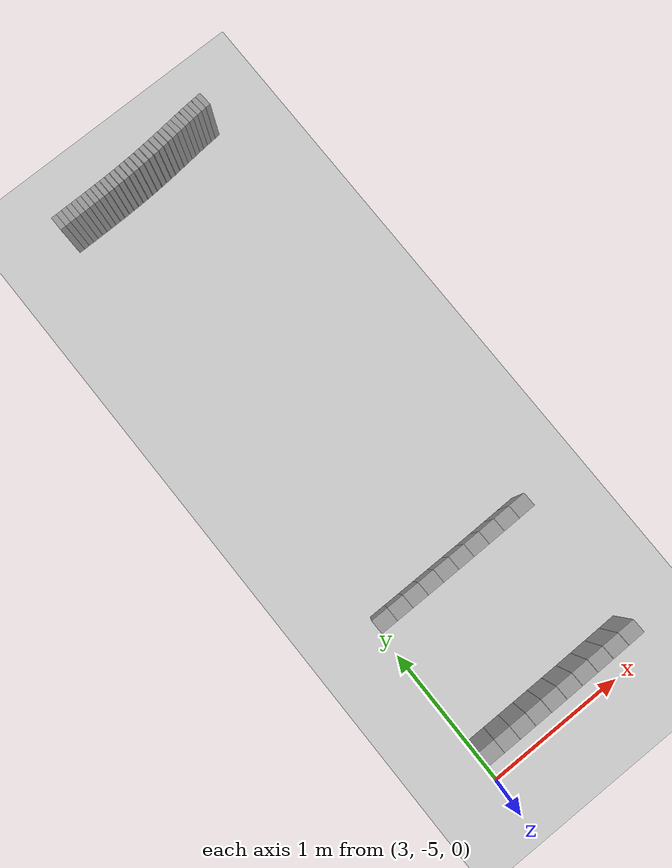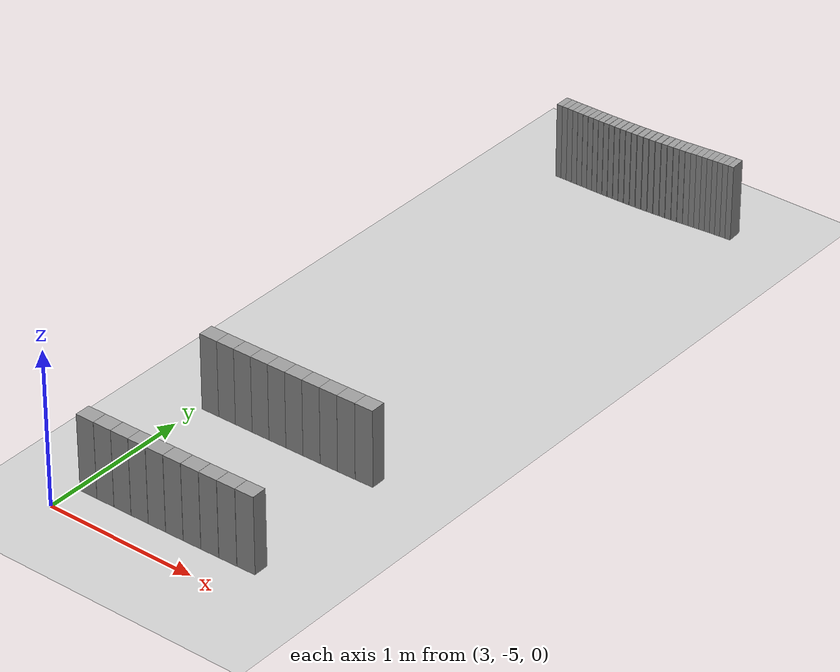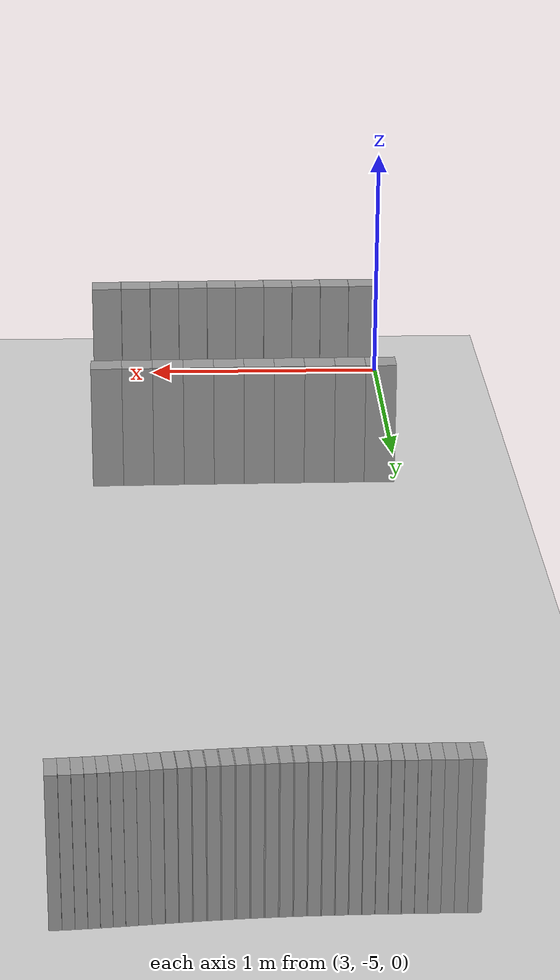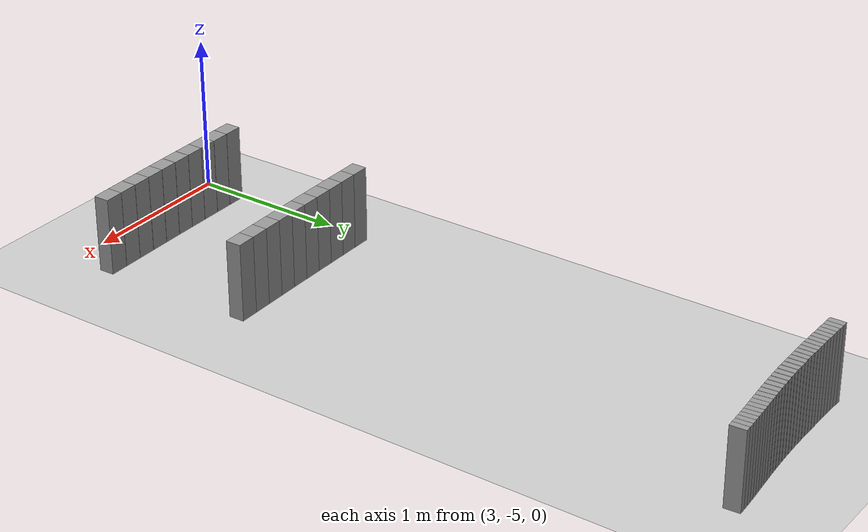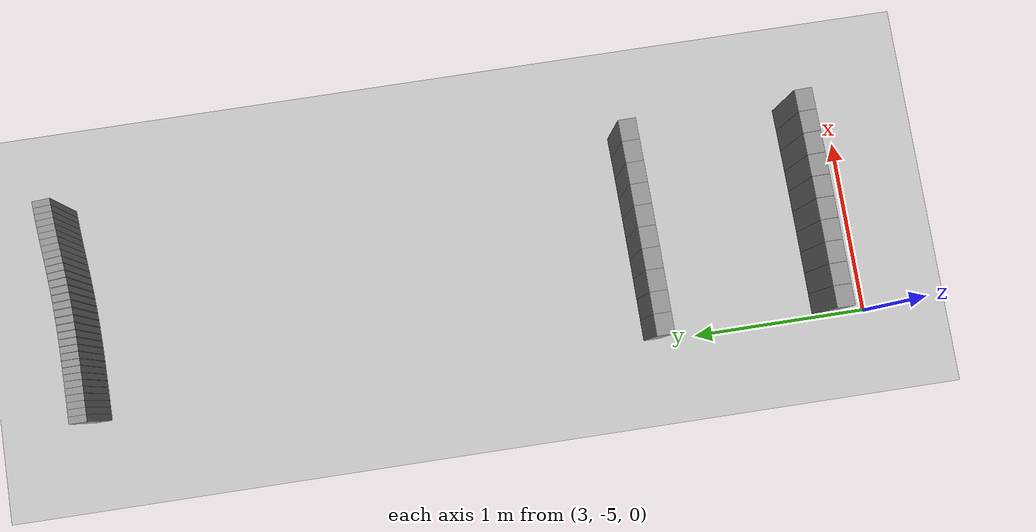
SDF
<sdf version="1.6">
 <world name="default">
  <include><uri>model://ground_plane</uri></include>
  <include><uri>model://sun</uri></include>
  <model name="wall_370_outward">
   <static>true</static>
   <link name="link">
    <collision name="collision">
     <geometry><box><size>0.12366791755563392 0.1 0.5</size></box></geometry>
    </collision>
    <visual name="visual">
     <geometry><box><size>0.12366791755563392 0.1 0.5</size></box></geometry>
     <material>
      <script><uri>file://media/materials/scripts/gazebo.material</uri><name>Gazebo/Gray</name></script>
     </material>
    </visual>
   </link>
   <pose>4.19330517443763 -4.7351160117918205 0.25 0 0 -3.1202677984249325</pose>
  </model>
  <model name="wall_371_outward">
   <static>true</static>
   <link name="link">
    <collision name="collision">
     <geometry><box><size>0.0010870246710620978 0.1 0.5</size></box></geometry>
    </collision>
    <visual name="visual">
     <geometry><box><size>0.0010870246710620978 0.1 0.5</size></box></geometry>
     <material>
      <script><uri>file://media/materials/scripts/gazebo.material</uri><name>Gazebo/Gray</name></script>
     </material>
    </visual>
   </link>
   <pose>4.130941873570114 -4.736445510830086 0.25 0 0 -3.121354823309786</pose>
  </model>
  <model name="wall_372_outward">
   <static>true</static>
   <link name="link">
    <collision name="collision">
     <geometry><box><size>0.12321832127677985 0.1 0.5</size></box></geometry>
    </collision>
    <visual name="visual">
     <geometry><box><size>0.12321832127677985 0.1 0.5</size></box></geometry>
     <material>
      <script><uri>file://media/materials/scripts/gazebo.material</uri><name>Gazebo/Gray</name></script>
     </material>
    </visual>
   </link>
   <pose>4.068800609233165 -4.7376363025169805 0.25 0 0 -3.122441848195207</pose>
  </model>
  <model name="wall_373_outward">
   <static>true</static>
   <link name="link">
    <collision name="collision">
     <geometry><box><size>0.00110959611185202 0.1 0.5</size></box></geometry>
    </collision>
    <visual name="visual">
     <geometry><box><size>0.00110959611185202 0.1 0.5</size></box></geometry>
     <material>
      <script><uri>file://media/materials/scripts/gazebo.material</uri><name>Gazebo/Gray</name></script>
     </material>
    </visual>
   </link>
   <pose>4.006648038163343 -4.738826104129047 0.25 0 0 -3.123551444534683</pose>
  </model>
  <model name="wall_374_outward">
   <static>true</static>
   <link name="link">
    <collision name="collision">
     <geometry><box><size>0.12275183024024117 0.1 0.5</size></box></geometry>
    </collision>
    <visual name="visual">
     <geometry><box><size>0.12275183024024117 0.1 0.5</size></box></geometry>
     <material>
      <script><uri>file://media/materials/scripts/gazebo.material</uri><name>Gazebo/Gray</name></script>
     </material>
    </visual>
   </link>
   <pose>3.9447262126725704 -4.739875256386808 0.25 0 0 -3.12466104087429</pose>
  </model>
  <model name="wall_375_outward">
   <static>true</static>
   <link name="link">
    <collision name="collision">
     <geometry><box><size>0.0011113499905004661 0.1 0.5</size></box></geometry>
    </collision>
    <visual name="visual">
     <geometry><box><size>0.0011113499905004661 0.1 0.5</size></box></geometry>
     <material>
      <script><uri>file://media/materials/scripts/gazebo.material</uri><name>Gazebo/Gray</name></script>
     </material>
    </visual>
   </link>
   <pose>3.8828034894915513 -4.740923190517418 0.25 0 0 -3.1257723910938977</pose>
  </model>
  <model name="wall_376_outward">
   <static>true</static>
   <link name="link">
    <collision name="collision">
     <geometry><box><size>0.12232557566678652 0.1 0.5</size></box></geometry>
    </collision>
    <visual name="visual">
     <geometry><box><size>0.12232557566678652 0.1 0.5</size></box></geometry>
     <material>
      <script><uri>file://media/materials/scripts/gazebo.material</uri><name>Gazebo/Gray</name></script>
     </material>
    </visual>
   </link>
   <pose>3.8210917124283412 -4.741831586716453 0.25 0 0 -3.1268837413128336</pose>
  </model>
  <model name="wall_377_outward">
   <static>true</static>
   <link name="link">
    <collision name="collision">
     <geometry><box><size>0.001083072633850852 0.1 0.5</size></box></geometry>
    </collision>
    <visual name="visual">
     <geometry><box><size>0.001083072633850852 0.1 0.5</size></box></geometry>
     <material>
      <script><uri>file://media/materials/scripts/gazebo.material</uri><name>Gazebo/Gray</name></script>
     </material>
    </visual>
   </link>
   <pose>3.7593940547785274 -4.742738571016465 0.25 0 0 -3.127966814158209</pose>
  </model>
  <model name="wall_378_outward">
   <static>true</static>
   <link name="link">
    <collision name="collision">
     <geometry><box><size>0.12199307544383395 0.1 0.5</size></box></geometry>
    </collision>
    <visual name="visual">
     <geometry><box><size>0.12199307544383395 0.1 0.5</size></box></geometry>
     <material>
      <script><uri>file://media/materials/scripts/gazebo.material</uri><name>Gazebo/Gray</name></script>
     </material>
    </visual>
   </link>
   <pose>3.69786082896573 -4.74351099495024 0.25 0 0 -3.1290498870040335</pose>
  </model>
  <model name="wall_379_outward">
   <static>true</static>
   <link name="link">
    <collision name="collision">
     <geometry><box><size>0.001026236252255086 0.1 0.5</size></box></geometry>
    </collision>
    <visual name="visual">
     <geometry><box><size>0.001026236252255086 0.1 0.5</size></box></geometry>
     <material>
      <script><uri>file://media/materials/scripts/gazebo.material</uri><name>Gazebo/Gray</name></script>
     </material>
    </visual>
   </link>
   <pose>3.636356005099917 -4.74428194943519 0.25 0 0 -3.130076123436059</pose>
  </model>
  <model name="wall_380_outward">
   <static>true</static>
   <link name="link">
    <collision name="collision">
     <geometry><box><size>0.12180383852046615 0.1 0.5</size></box></geometry>
    </collision>
    <visual name="visual">
     <geometry><box><size>0.12180383852046615 0.1 0.5</size></box></geometry>
     <material>
      <script><uri>file://media/materials/scripts/gazebo.material</uri><name>Gazebo/Gray</name></script>
     </material>
    </visual>
   </link>
   <pose>3.57494435272429 -4.744926725948504 0.25 0 0 -3.131102359868808</pose>
  </model>
  <model name="wall_381_outward">
   <static>true</static>
   <link name="link">
    <collision name="collision">
     <geometry><box><size>0.0009478194596262945 0.1 0.5</size></box></geometry>
    </collision>
    <visual name="visual">
     <geometry><box><size>0.0009478194596262945 0.1 0.5</size></box></geometry>
     <material>
      <script><uri>file://media/materials/scripts/gazebo.material</uri><name>Gazebo/Gray</name></script>
     </material>
    </visual>
   </link>
   <pose>3.513571896294471 -4.745570115454772 0.25 0 0 -3.132050179470421</pose>
  </model>
  <model name="wall_382_outward">
   <static>true</static>
   <link name="link">
    <collision name="collision">
     <geometry><box><size>0.12179123288356289 0.1 0.5</size></box></geometry>
    </collision>
    <visual name="visual">
     <geometry><box><size>0.12179123288356289 0.1 0.5</size></box></geometry>
     <material>
      <script><uri>file://media/materials/scripts/gazebo.material</uri><name>Gazebo/Gray</name></script>
     </material>
    </visual>
   </link>
   <pose>3.452204640807021 -4.746098007998994 0.25 0 0 -3.1329979990718884</pose>
  </model>
  <model name="wall_383_outward">
   <static>true</static>
   <link name="link">
    <collision name="collision">
     <geometry><box><size>0.0008492713830973765 0.1 0.5</size></box></geometry>
    </collision>
    <visual name="visual">
     <geometry><box><size>0.0008492713830973765 0.1 0.5</size></box></geometry>
     <material>
      <script><uri>file://media/materials/scripts/gazebo.material</uri><name>Gazebo/Gray</name></script>
     </material>
    </visual>
   </link>
   <pose>3.390886650518258 -4.7466246672737125 0.25 0 0 -3.1338472705576295</pose>
  </model>
  <model name="wall_384_outward">
   <static>true</static>
   <link name="link">
    <collision name="collision">
     <geometry><box><size>0.1219790886761732 0.1 0.5</size></box></geometry>
    </collision>
    <visual name="visual">
     <geometry><box><size>0.1219790886761732 0.1 0.5</size></box></geometry>
     <material>
      <script><uri>file://media/materials/scripts/gazebo.material</uri><name>Gazebo/Gray</name></script>
     </material>
    </visual>
   </link>
   <pose>3.329473933440158 -4.747048543574277 0.25 0 0 -3.1346965420422657</pose>
  </model>
  <model name="wall_385_outward">
   <static>true</static>
   <link name="link">
    <collision name="collision">
     <geometry><box><size>0.00073944769239684 0.1 0.5</size></box></geometry>
    </collision>
    <visual name="visual">
     <geometry><box><size>0.00073944769239684 0.1 0.5</size></box></geometry>
     <material>
      <script><uri>file://media/materials/scripts/gazebo.material</uri><name>Gazebo/Gray</name></script>
     </material>
    </visual>
   </link>
   <pose>3.268116122477399 -4.747471407192682 0.25 0 0 -3.135435989802174</pose>
  </model>
  <model name="wall_386_outward">
   <static>true</static>
   <link name="link">
    <collision name="collision">
     <geometry><box><size>0.12237171006181398 0.1 0.5</size></box></geometry>
    </collision>
    <visual name="visual">
     <geometry><box><size>0.12237171006181398 0.1 0.5</size></box></geometry>
     <material>
      <script><uri>file://media/materials/scripts/gazebo.material</uri><name>Gazebo/Gray</name></script>
     </material>
    </visual>
   </link>
   <pose>3.206561448392248 -4.7478051388171085 0.25 0 0 -3.1361754375618314</pose>
  </model>
  <model name="wall_387_outward">
   <static>true</static>
   <link name="link">
    <collision name="collision">
     <geometry><box><size>0.0006247259712482788 0.1 0.5</size></box></geometry>
    </collision>
    <visual name="visual">
     <geometry><box><size>0.0006247259712482788 0.1 0.5</size></box></geometry>
     <material>
      <script><uri>file://media/materials/scripts/gazebo.material</uri><name>Gazebo/Gray</name></script>
     </material>
    </visual>
   </link>
   <pose>3.1450641317477563 -4.74813809118126 0.25 0 0 -3.1368001635727953</pose>
  </model>
  <model name="wall_388_outward">
   <static>true</static>
   <link name="link">
    <collision name="collision">
     <geometry><box><size>0.12296129148105463 0.1 0.5</size></box></geometry>
    </collision>
    <visual name="visual">
     <geometry><box><size>0.12296129148105463 0.1 0.5</size></box></geometry>
     <material>
      <script><uri>file://media/materials/scripts/gazebo.material</uri><name>Gazebo/Gray</name></script>
     </material>
    </visual>
   </link>
   <pose>3.083271660575298 -4.7483958242524755 0.25 0 0 -3.137424889585602</pose>
  </model>
  <model name="wall_9_inward">
   <static>true</static>
   <link name="link">
    <collision name="collision">
     <geometry><box><size>0.04004275637028519 0.1 0.5</size></box></geometry>
    </collision>
    <visual name="visual">
     <geometry><box><size>0.04004275637028519 0.1 0.5</size></box></geometry>
     <material>
      <script><uri>file://media/materials/scripts/gazebo.material</uri><name>Gazebo/Gray</name></script>
     </material>
    </visual>
   </link>
   <pose>3.0459852781860457 -0.5249386952649255 0.25 0 0 0.0007166678419841866</pose>
  </model>
  <model name="wall_10_inward">
   <static>true</static>
   <link name="link">
    <collision name="collision">
     <geometry><box><size>0.03935795731013227 0.1 0.5</size></box></geometry>
    </collision>
    <visual name="visual">
     <geometry><box><size>0.03935795731013227 0.1 0.5</size></box></geometry>
     <material>
      <script><uri>file://media/materials/scripts/gazebo.material</uri><name>Gazebo/Gray</name></script>
     </material>
    </visual>
   </link>
   <pose>3.0856856178751544 -0.5249026056463659 0.25 0 0 0.0011047802172066445</pose>
  </model>
  <model name="wall_11_inward">
   <static>true</static>
   <link name="link">
    <collision name="collision">
     <geometry><box><size>0.038790238399505385 0.1 0.5</size></box></geometry>
    </collision>
    <visual name="visual">
     <geometry><box><size>0.038790238399505385 0.1 0.5</size></box></geometry>
     <material>
      <script><uri>file://media/materials/scripts/gazebo.material</uri><name>Gazebo/Gray</name></script>
     </material>
    </visual>
   </link>
   <pose>3.124759676745194 -0.5248485169463286 0.25 0 0 0.0016678305923522106</pose>
  </model>
  <model name="wall_12_inward">
   <static>true</static>
   <link name="link">
    <collision name="collision">
     <geometry><box><size>0.03781016411227607 0.1 0.5</size></box></geometry>
    </collision>
    <visual name="visual">
     <geometry><box><size>0.03781016411227607 0.1 0.5</size></box></geometry>
     <material>
      <script><uri>file://media/materials/scripts/gazebo.material</uri><name>Gazebo/Gray</name></script>
     </material>
    </visual>
   </link>
   <pose>3.163059793958107 -0.5247697177604749 0.25 0 0 0.00245708927943689</pose>
  </model>
  <model name="wall_13_inward">
   <static>true</static>
   <link name="link">
    <collision name="collision">
     <geometry><box><size>0.0005469804384499359 0.1 0.5</size></box></geometry>
    </collision>
    <visual name="visual">
     <geometry><box><size>0.0005469804384499359 0.1 0.5</size></box></geometry>
     <material>
      <script><uri>file://media/materials/scripts/gazebo.material</uri><name>Gazebo/Gray</name></script>
     </material>
    </visual>
   </link>
   <pose>3.1822383079317422 -0.5247224447503106 0.25 0 0 0.00300406974497649</pose>
  </model>
  <model name="wall_14_inward">
   <static>true</static>
   <link name="link">
    <collision name="collision">
     <geometry><box><size>0.037336876459450434 0.1 0.5</size></box></geometry>
    </collision>
    <visual name="visual">
     <geometry><box><size>0.037336876459450434 0.1 0.5</size></box></geometry>
     <material>
      <script><uri>file://media/materials/scripts/gazebo.material</uri><name>Gazebo/Gray</name></script>
     </material>
    </visual>
   </link>
   <pose>3.2011801174426626 -0.524655330745665 0.25 0 0 0.003551050210885177</pose>
  </model>
  <model name="wall_15_inward">
   <static>true</static>
   <link name="link">
    <collision name="collision">
     <geometry><box><size>0.000735328271408092 0.1 0.5</size></box></geometry>
    </collision>
    <visual name="visual">
     <geometry><box><size>0.000735328271408092 0.1 0.5</size></box></geometry>
     <material>
      <script><uri>file://media/materials/scripts/gazebo.material</uri><name>Gazebo/Gray</name></script>
     </material>
    </visual>
   </link>
   <pose>3.220216098726559 -0.5245874623806381 0.25 0 0 0.004286378548627907</pose>
  </model>
  <model name="wall_16_inward">
   <static>true</static>
   <link name="link">
    <collision name="collision">
     <geometry><box><size>0.03697863559663404 0.1 0.5</size></box></geometry>
    </collision>
    <visual name="visual">
     <geometry><box><size>0.03697863559663404 0.1 0.5</size></box></geometry>
     <material>
      <script><uri>file://media/materials/scripts/gazebo.material</uri><name>Gazebo/Gray</name></script>
     </material>
    </visual>
   </link>
   <pose>3.239072844155965 -0.5244930388935223 0.25 0 0 0.005021706886232845</pose>
  </model>
  <model name="wall_17_inward">
   <static>true</static>
   <link name="link">
    <collision name="collision">
     <geometry><box><size>0.0009633117974473523 0.1 0.5</size></box></geometry>
    </collision>
    <visual name="visual">
     <geometry><box><size>0.0009633117974473523 0.1 0.5</size></box></geometry>
     <material>
      <script><uri>file://media/materials/scripts/gazebo.material</uri><name>Gazebo/Gray</name></script>
     </material>
    </visual>
   </link>
   <pose>3.2580435760994 -0.5243973086468303 0.25 0 0 0.00598501883269757</pose>
  </model>
  <model name="wall_18_inward">
   <static>true</static>
   <link name="link">
    <collision name="collision">
     <geometry><box><size>0.03673906226880032 0.1 0.5</size></box></geometry>
    </collision>
    <visual name="visual">
     <geometry><box><size>0.03673906226880032 0.1 0.5</size></box></geometry>
     <material>
      <script><uri>file://media/materials/scripts/gazebo.material</uri><name>Gazebo/Gray</name></script>
     </material>
    </visual>
   </link>
   <pose>3.27689431107371 -0.5242667893928763 0.25 0 0 0.006948330779105071</pose>
  </model>
  <model name="wall_19_inward">
   <static>true</static>
   <link name="link">
    <collision name="collision">
     <geometry><box><size>0.001230187532855087 0.1 0.5</size></box></geometry>
    </collision>
    <visual name="visual">
     <geometry><box><size>0.001230187532855087 0.1 0.5</size></box></geometry>
     <material>
      <script><uri>file://media/materials/scripts/gazebo.material</uri><name>Gazebo/Gray</name></script>
     </material>
    </visual>
   </link>
   <pose>3.295878471971131 -0.5241341223415947 0.25 0 0 0.008178518622116182</pose>
  </model>
  <model name="wall_20_inward">
   <static>true</static>
   <link name="link">
    <collision name="collision">
     <geometry><box><size>0.03661372810756917 0.1 0.5</size></box></geometry>
    </collision>
    <visual name="visual">
     <geometry><box><size>0.03661372810756917 0.1 0.5</size></box></geometry>
     <material>
      <script><uri>file://media/materials/scripts/gazebo.material</uri><name>Gazebo/Gray</name></script>
     </material>
    </visual>
   </link>
   <pose>3.3147995989299925 -0.5239568504729368 0.25 0 0 0.009408706465386626</pose>
  </model>
  <model name="wall_21_inward">
   <static>true</static>
   <link name="link">
    <collision name="collision">
     <geometry><box><size>0.0015318461882710007 0.1 0.5</size></box></geometry>
    </collision>
    <visual name="visual">
     <geometry><box><size>0.0015318461882710007 0.1 0.5</size></box></geometry>
     <material>
      <script><uri>file://media/materials/scripts/gazebo.material</uri><name>Gazebo/Gray</name></script>
     </material>
    </visual>
   </link>
   <pose>3.333871529949299 -0.5237762296487889 0.25 0 0 0.010940553252866608</pose>
  </model>
  <model name="wall_22_inward">
   <static>true</static>
   <link name="link">
    <collision name="collision">
     <geometry><box><size>0.03659415004778751 0.1 0.5</size></box></geometry>
    </collision>
    <visual name="visual">
     <geometry><box><size>0.03659415004778751 0.1 0.5</size></box></geometry>
     <material>
      <script><uri>file://media/materials/scripts/gazebo.material</uri><name>Gazebo/Gray</name></script>
     </material>
    </visual>
   </link>
   <pose>3.3529330590939086 -0.5235396476709615 0.25 0 0 0.01247240004011466</pose>
  </model>
  <model name="wall_23_inward">
   <static>true</static>
   <link name="link">
    <collision name="collision">
     <geometry><box><size>0.0018608365392224402 0.1 0.5</size></box></geometry>
    </collision>
    <visual name="visual">
     <geometry><box><size>0.0018608365392224402 0.1 0.5</size></box></geometry>
     <material>
      <script><uri>file://media/materials/scripts/gazebo.material</uri><name>Gazebo/Gray</name></script>
     </material>
    </visual>
   </link>
   <pose>3.372159033680669 -0.523298109698812 0.25 0 0 0.01433323765323476</pose>
  </model>
  <model name="wall_24_inward">
   <static>true</static>
   <link name="link">
    <collision name="collision">
     <geometry><box><size>0.036667603985951015 0.1 0.5</size></box></geometry>
    </collision>
    <visual name="visual">
     <geometry><box><size>0.036667603985951015 0.1 0.5</size></box></geometry>
     <material>
      <script><uri>file://media/materials/scripts/gazebo.material</uri><name>Gazebo/Gray</name></script>
     </material>
    </visual>
   </link>
   <pose>3.3914207544219437 -0.5229878882565572 0.25 0 0 0.016194075266410042</pose>
  </model>
  <model name="wall_25_inward">
   <static>true</static>
   <link name="link">
    <collision name="collision">
     <geometry><box><size>0.0022071171476583927 0.1 0.5</size></box></geometry>
    </collision>
    <visual name="visual">
     <geometry><box><size>0.0022071171476583927 0.1 0.5</size></box></geometry>
     <material>
      <script><uri>file://media/materials/scripts/gazebo.material</uri><name>Gazebo/Gray</name></script>
     </material>
    </visual>
   </link>
   <pose>3.410855524209783 -0.5226706966141965 0.25 0 0 0.018401194206001562</pose>
  </model>
  <model name="wall_26_inward">
   <static>true</static>
   <link name="link">
    <collision name="collision">
     <geometry><box><size>0.03681560215753572 0.1 0.5</size></box></geometry>
    </collision>
    <visual name="visual">
     <geometry><box><size>0.03681560215753572 0.1 0.5</size></box></geometry>
     <material>
      <script><uri>file://media/materials/scripts/gazebo.material</uri><name>Gazebo/Gray</name></script>
     </material>
    </visual>
   </link>
   <pose>3.4303627882511294 -0.522271064087096 0.25 0 0 0.020608313145628835</pose>
  </model>
  <model name="wall_27_inward">
   <static>true</static>
   <link name="link">
    <collision name="collision">
     <geometry><box><size>0.002558353354229346 0.1 0.5</size></box></geometry>
    </collision>
    <visual name="visual">
     <geometry><box><size>0.002558353354229346 0.1 0.5</size></box></geometry>
     <material>
      <script><uri>file://media/materials/scripts/gazebo.material</uri><name>Gazebo/Gray</name></script>
     </material>
    </visual>
   </link>
   <pose>3.4500455139769004 -0.5218621055972998 0.25 0 0 0.0231666692907142</pose>
  </model>
  <model name="wall_28_inward">
   <static>true</static>
   <link name="link">
    <collision name="collision">
     <geometry><box><size>0.037015600175348246 0.1 0.5</size></box></geometry>
    </collision>
    <visual name="visual">
     <geometry><box><size>0.037015600175348246 0.1 0.5</size></box></geometry>
     <material>
      <script><uri>file://media/materials/scripts/gazebo.material</uri><name>Gazebo/Gray</name></script>
     </material>
    </visual>
   </link>
   <pose>3.4698260238135807 -0.521356412868694 0.25 0 0 0.025725025435726502</pose>
  </model>
  <model name="wall_29_inward">
   <static>true</static>
   <link name="link">
    <collision name="collision">
     <geometry><box><size>0.00289992183832993 0.1 0.5</size></box></geometry>
    </collision>
    <visual name="visual">
     <geometry><box><size>0.00289992183832993 0.1 0.5</size></box></geometry>
     <material>
      <script><uri>file://media/materials/scripts/gazebo.material</uri><name>Gazebo/Gray</name></script>
     </material>
    </visual>
   </link>
   <pose>3.489777067140934 -0.5208388523595822 0.25 0 0 0.028624951338530897</pose>
  </model>
  <model name="wall_30_inward">
   <static>true</static>
   <link name="link">
    <collision name="collision">
     <geometry><box><size>0.037244120438127054 0.1 0.5</size></box></geometry>
    </collision>
    <visual name="visual">
     <geometry><box><size>0.037244120438127054 0.1 0.5</size></box></geometry>
     <material>
      <script><uri>file://media/materials/scripts/gazebo.material</uri><name>Gazebo/Gray</name></script>
     </material>
    </visual>
   </link>
   <pose>3.5098392415776294 -0.5202103920376497 0.25 0 0 0.03152487724142456</pose>
  </model>
  <model name="wall_31_inward">
   <static>true</static>
   <link name="link">
    <collision name="collision">
     <geometry><box><size>0.0032156344819885543 0.1 0.5</size></box></geometry>
    </collision>
    <visual name="visual">
     <geometry><box><size>0.0032156344819885543 0.1 0.5</size></box></geometry>
     <material>
      <script><uri>file://media/materials/scripts/gazebo.material</uri><name>Gazebo/Gray</name></script>
     </material>
    </visual>
   </link>
   <pose>3.530058896193184 -0.5195675859408302 0.25 0 0 0.034740517265201984</pose>
  </model>
  <model name="wall_32_inward">
   <static>true</static>
   <link name="link">
    <collision name="collision">
     <geometry><box><size>0.03747816316905265 0.1 0.5</size></box></geometry>
    </collision>
    <visual name="visual">
     <geometry><box><size>0.03747816316905265 0.1 0.5</size></box></geometry>
     <material>
      <script><uri>file://media/materials/scripts/gazebo.material</uri><name>Gazebo/Gray</name></script>
     </material>
    </visual>
   </link>
   <pose>3.550391328081436 -0.5188006480153616 0.25 0 0 0.037956157289000286</pose>
  </model>
  <model name="wall_33_inward">
   <static>true</static>
   <link name="link">
    <collision name="collision">
     <geometry><box><size>0.0034897356509867392 0.1 0.5</size></box></geometry>
    </collision>
    <visual name="visual">
     <geometry><box><size>0.0034897356509867392 0.1 0.5</size></box></geometry>
     <material>
      <script><uri>file://media/materials/scripts/gazebo.material</uri><name>Gazebo/Gray</name></script>
     </material>
    </visual>
   </link>
   <pose>3.57086028227691 -0.518017258342499 0.25 0 0 0.04144590002317079</pose>
  </model>
  <model name="wall_34_inward">
   <static>true</static>
   <link name="link">
    <collision name="collision">
     <geometry><box><size>0.037694022170647136 0.1 0.5</size></box></geometry>
    </collision>
    <visual name="visual">
     <geometry><box><size>0.037694022170647136 0.1 0.5</size></box></geometry>
     <material>
      <script><uri>file://media/materials/scripts/gazebo.material</uri><name>Gazebo/Gray</name></script>
     </material>
    </visual>
   </link>
   <pose>3.591431637914079 -0.5170983438540406 0.25 0 0 0.044935642757347266</pose>
  </model>
  <model name="wall_35_inward">
   <static>true</static>
   <link name="link">
    <collision name="collision">
     <geometry><box><size>0.0037039543575072 0.1 0.5</size></box></geometry>
    </collision>
    <visual name="visual">
     <geometry><box><size>0.0037039543575072 0.1 0.5</size></box></geometry>
     <material>
      <script><uri>file://media/materials/scripts/gazebo.material</uri><name>Gazebo/Gray</name></script>
     </material>
    </visual>
   </link>
   <pose>3.61210941104203 -0.5161616823554911 0.25 0 0 0.04863960558416705</pose>
  </model>
  <model name="wall_36_inward">
   <static>true</static>
   <link name="link">
    <collision name="collision">
     <geometry><box><size>0.03787301845606724 0.1 0.5</size></box></geometry>
    </collision>
    <visual name="visual">
     <geometry><box><size>0.03787301845606724 0.1 0.5</size></box></geometry>
     <material>
      <script><uri>file://media/materials/scripts/gazebo.material</uri><name>Gazebo/Gray</name></script>
     </material>
    </visual>
   </link>
   <pose>3.632869771499548 -0.5150808865271305 0.25 0 0 0.05234356841099441</pose>
  </model>
  <model name="wall_37_inward">
   <static>true</static>
   <link name="link">
    <collision name="collision">
     <geometry><box><size>0.0038405885306321778 0.1 0.5</size></box></geometry>
    </collision>
    <visual name="visual">
     <geometry><box><size>0.0038405885306321778 0.1 0.5</size></box></geometry>
     <material>
      <script><uri>file://media/materials/scripts/gazebo.material</uri><name>Gazebo/Gray</name></script>
     </material>
    </visual>
   </link>
   <pose>3.6536976092645874 -0.513982301244627 0.25 0 0 0.056184166383218125</pose>
  </model>
  <model name="wall_38_inward">
   <static>true</static>
   <link name="link">
    <collision name="collision">
     <geometry><box><size>0.03800059566247077 0.1 0.5</size></box></geometry>
    </collision>
    <visual name="visual">
     <geometry><box><size>0.03800059566247077 0.1 0.5</size></box></geometry>
     <material>
      <script><uri>file://media/materials/scripts/gazebo.material</uri><name>Gazebo/Gray</name></script>
     </material>
    </visual>
   </link>
   <pose>3.6745809528019056 -0.5127346641999062 0.25 0 0 0.06002476435543089</pose>
  </model>
  <model name="wall_39_inward">
   <static>true</static>
   <link name="link">
    <collision name="collision">
     <geometry><box><size>0.0038808005469261318 0.1 0.5</size></box></geometry>
    </collision>
    <visual name="visual">
     <geometry><box><size>0.0038808005469261318 0.1 0.5</size></box></geometry>
     <material>
      <script><uri>file://media/materials/scripts/gazebo.material</uri><name>Gazebo/Gray</name></script>
     </material>
    </visual>
   </link>
   <pose>3.695483471534878 -0.5114709425255104 0.25 0 0 0.0639055746436182</pose>
  </model>
  <model name="wall_40_inward">
   <static>true</static>
   <link name="link">
    <collision name="collision">
     <geometry><box><size>0.03806894481720337 0.1 0.5</size></box></geometry>
    </collision>
    <visual name="visual">
     <geometry><box><size>0.03806894481720337 0.1 0.5</size></box></geometry>
     <material>
      <script><uri>file://media/materials/scripts/gazebo.material</uri><name>Gazebo/Gray</name></script>
     </material>
    </visual>
   </link>
   <pose>3.7164106684429736 -0.5100577343524584 0.25 0 0 0.06778638493182486</pose>
  </model>
  <model name="wall_41_inward">
   <static>true</static>
   <link name="link">
    <collision name="collision">
     <geometry><box><size>0.0038067126122496367 0.1 0.5</size></box></geometry>
    </collision>
    <visual name="visual">
     <geometry><box><size>0.0038067126122496367 0.1 0.5</size></box></geometry>
     <material>
      <script><uri>file://media/materials/scripts/gazebo.material</uri><name>Gazebo/Gray</name></script>
     </material>
    </visual>
   </link>
   <pose>3.7372999064449663 -0.5086322933753497 0.25 0 0 0.07159310673804467</pose>
  </model>
  <model name="wall_42_inward">
   <static>true</static>
   <link name="link">
    <collision name="collision">
     <geometry><box><size>0.038076927111410155 0.1 0.5</size></box></geometry>
    </collision>
    <visual name="visual">
     <geometry><box><size>0.038076927111410155 0.1 0.5</size></box></geometry>
     <material>
      <script><uri>file://media/materials/scripts/gazebo.material</uri><name>Gazebo/Gray</name></script>
     </material>
    </visual>
   </link>
   <pose>3.7581827580187515 -0.507062005453206 0.25 0 0 0.0753998285442143</pose>
  </model>
  <model name="wall_43_inward">
   <static>true</static>
   <link name="link">
    <collision name="collision">
     <geometry><box><size>0.003599954638574755 0.1 0.5</size></box></geometry>
    </collision>
    <visual name="visual">
     <geometry><box><size>0.003599954638574755 0.1 0.5</size></box></geometry>
     <material>
      <script><uri>file://media/materials/scripts/gazebo.material</uri><name>Gazebo/Gray</name></script>
     </material>
    </visual>
   </link>
   <pose>3.778961492539416 -0.5054858183747325 0.25 0 0 0.07899979095850962</pose>
  </model>
  <model name="wall_44_inward">
   <static>true</static>
   <link name="link">
    <collision name="collision">
     <geometry><box><size>0.03803241013765379 0.1 0.5</size></box></geometry>
    </collision>
    <visual name="visual">
     <geometry><box><size>0.03803241013765379 0.1 0.5</size></box></geometry>
     <material>
      <script><uri>file://media/materials/scripts/gazebo.material</uri><name>Gazebo/Gray</name></script>
     </material>
    </visual>
   </link>
   <pose>3.7997072268090797 -0.5037748200599914 0.25 0 0 0.08259975337286654</pose>
  </model>
  <model name="wall_45_inward">
   <static>true</static>
   <link name="link">
    <collision name="collision">
     <geometry><box><size>0.0032478193600297255 0.1 0.5</size></box></geometry>
    </collision>
    <visual name="visual">
     <geometry><box><size>0.0032478193600297255 0.1 0.5</size></box></geometry>
     <material>
      <script><uri>file://media/materials/scripts/gazebo.material</uri><name>Gazebo/Gray</name></script>
     </material>
    </visual>
   </link>
   <pose>3.8202765270422936 -0.5020666341738423 0.25 0 0 0.08584757844277452</pose>
  </model>
  <model name="wall_46_inward">
   <static>true</static>
   <link name="link">
    <collision name="collision">
     <geometry><box><size>0.037949500873529246 0.1 0.5</size></box></geometry>
    </collision>
    <visual name="visual">
     <geometry><box><size>0.037949500873529246 0.1 0.5</size></box></geometry>
     <material>
      <script><uri>file://media/materials/scripts/gazebo.material</uri><name>Gazebo/Gray</name></script>
     </material>
    </visual>
   </link>
   <pose>3.8407939459893616 -0.5002390693110907 0.25 0 0 0.08909540351267058</pose>
  </model>
  <model name="wall_47_inward">
   <static>true</static>
   <link name="link">
    <collision name="collision">
     <geometry><box><size>0.0027409660824964147 0.1 0.5</size></box></geometry>
    </collision>
    <visual name="visual">
     <geometry><box><size>0.0027409660824964147 0.1 0.5</size></box></geometry>
     <material>
      <script><uri>file://media/materials/scripts/gazebo.material</uri><name>Gazebo/Gray</name></script>
     </material>
    </visual>
   </link>
   <pose>3.8610581433626816 -0.4984250586385792 0.25 0 0 0.0918363730272711</pose>
  </model>
  <model name="wall_48_inward">
   <static>true</static>
   <link name="link">
    <collision name="collision">
     <geometry><box><size>0.03785032539806037 0.1 0.5</size></box></geometry>
    </collision>
    <visual name="visual">
     <geometry><box><size>0.03785032539806037 0.1 0.5</size></box></geometry>
     <material>
      <script><uri>file://media/materials/scripts/gazebo.material</uri><name>Gazebo/Gray</name></script>
     </material>
    </visual>
   </link>
   <pose>3.8812634353701805 -0.4965121508919398 0.25 0 0 0.09457734254188303</pose>
  </model>
  <model name="wall_49_inward">
   <static>true</static>
   <link name="link">
    <collision name="collision">
     <geometry><box><size>0.002080569062907864 0.1 0.5</size></box></geometry>
    </collision>
    <visual name="visual">
     <geometry><box><size>0.002080569062907864 0.1 0.5</size></box></geometry>
     <material>
      <script><uri>file://media/materials/scripts/gazebo.material</uri><name>Gazebo/Gray</name></script>
     </material>
    </visual>
   </link>
   <pose>3.9011394483009774 -0.4946245312625889 0.25 0 0 0.09665791310581781</pose>
  </model>
  <model name="wall_50_inward">
   <static>true</static>
   <link name="link">
    <collision name="collision">
     <geometry><box><size>0.0377625326425286 0.1 0.5</size></box></geometry>
    </collision>
    <visual name="visual">
     <geometry><box><size>0.0377625326425286 0.1 0.5</size></box></geometry>
     <material>
      <script><uri>file://media/materials/scripts/gazebo.material</uri><name>Gazebo/Gray</name></script>
     </material>
    </visual>
   </link>
   <pose>3.9209641786749376 -0.4926628562252976 0.25 0 0 0.09873848366980532</pose>
  </model>
  <model name="wall_51_inward">
   <static>true</static>
   <link name="link">
    <collision name="collision">
     <geometry><box><size>0.0012804868970739348 0.1 0.5</size></box></geometry>
    </collision>
    <visual name="visual">
     <geometry><box><size>0.0012804868970739348 0.1 0.5</size></box></geometry>
     <material>
      <script><uri>file://media/materials/scripts/gazebo.material</uri><name>Gazebo/Gray</name></script>
     </material>
    </visual>
   </link>
   <pose>3.940390523980825 -0.49073764664505787 0.25 0 0 0.1000189709168986</pose>
  </model>
  <model name="wall_52_inward">
   <static>true</static>
   <link name="link">
    <collision name="collision">
     <geometry><box><size>0.03809029300492786 0.1 0.5</size></box></geometry>
    </collision>
    <visual name="visual">
     <geometry><box><size>0.03809029300492786 0.1 0.5</size></box></geometry>
     <material>
      <script><uri>file://media/materials/scripts/gazebo.material</uri><name>Gazebo/Gray</name></script>
     </material>
    </visual>
   </link>
   <pose>3.959975074035828 -0.4887476826858295 0.25 0 0 0.10130310069910836</pose>
  </model>
  <model name="wall_53_inward">
   <static>true</static>
   <link name="link">
    <collision name="collision">
     <geometry><box><size>0.037447935921595434 0.1 0.5</size></box></geometry>
    </collision>
    <visual name="visual">
     <geometry><box><size>0.037447935921595434 0.1 0.5</size></box></geometry>
     <material>
      <script><uri>file://media/materials/scripts/gazebo.material</uri><name>Gazebo/Gray</name></script>
     </material>
    </visual>
   </link>
   <pose>3.997549145980141 -0.4849142861649161 0.25 0 0 0.1020444286160287</pose>
  </model>
  <model name="wall_54_inward">
   <static>true</static>
   <link name="link">
    <collision name="collision">
     <geometry><box><size>0.036800217788398086 0.1 0.5</size></box></geometry>
    </collision>
    <visual name="visual">
     <geometry><box><size>0.036800217788398086 0.1 0.5</size></box></geometry>
     <material>
      <script><uri>file://media/materials/scripts/gazebo.material</uri><name>Gazebo/Gray</name></script>
     </material>
    </visual>
   </link>
   <pose>4.0344823409133825 -0.48115453918885254 0.25 0 0 0.10084331437362572</pose>
  </model>
  <model name="wall_55_inward">
   <static>true</static>
   <link name="link">
    <collision name="collision">
     <geometry><box><size>0.03613511859138261 0.1 0.5</size></box></geometry>
    </collision>
    <visual name="visual">
     <geometry><box><size>0.03613511859138261 0.1 0.5</size></box></geometry>
     <material>
      <script><uri>file://media/materials/scripts/gazebo.material</uri><name>Gazebo/Gray</name></script>
     </material>
    </visual>
   </link>
   <pose>4.0707703787220275 -0.47753986937129 0.25 0 0 0.09769396718286127</pose>
  </model>
  <model name="wall_56_inward">
   <static>true</static>
   <link name="link">
    <collision name="collision">
     <geometry><box><size>0.03572924079585705 0.1 0.5</size></box></geometry>
    </collision>
    <visual name="visual">
     <geometry><box><size>0.03572924079585705 0.1 0.5</size></box></geometry>
     <material>
      <script><uri>file://media/materials/scripts/gazebo.material</uri><name>Gazebo/Gray</name></script>
     </material>
    </visual>
   </link>
   <pose>4.106539665046075 -0.474123479387442 0.25 0 0 0.0927239092182007</pose>
  </model>
  <model name="wall_57_inward">
   <static>true</static>
   <link name="link">
    <collision name="collision">
     <geometry><box><size>0.03565917222398462 0.1 0.5</size></box></geometry>
    </collision>
    <visual name="visual">
     <geometry><box><size>0.03565917222398462 0.1 0.5</size></box></geometry>
     <material>
      <script><uri>file://media/materials/scripts/gazebo.material</uri><name>Gazebo/Gray</name></script>
     </material>
    </visual>
   </link>
   <pose>4.142090941049883 -0.4709345039680807 0.25 0 0 0.08619228216673684</pose>
  </model>
  <model name="wall_58_inward">
   <static>true</static>
   <link name="link">
    <collision name="collision">
     <geometry><box><size>0.03597655211565918 0.1 0.5</size></box></geometry>
    </collision>
    <visual name="visual">
     <geometry><box><size>0.03597655211565918 0.1 0.5</size></box></geometry>
     <material>
      <script><uri>file://media/materials/scripts/gazebo.material</uri><name>Gazebo/Gray</name></script>
     </material>
    </visual>
   </link>
   <pose>4.177787271573856 -0.4679896648140325 0.25 0 0 0.07846312290029592</pose>
  </model>
  <model name="wall_59_inward">
   <static>true</static>
   <link name="link">
    <collision name="collision">
     <geometry><box><size>0.03669836444977009 0.1 0.5</size></box></geometry>
    </collision>
    <visual name="visual">
     <geometry><box><size>0.03669836444977009 0.1 0.5</size></box></geometry>
     <material>
      <script><uri>file://media/materials/scripts/gazebo.material</uri><name>Gazebo/Gray</name></script>
     </material>
    </visual>
   </link>
   <pose>4.214024492226919 -0.4652969181745076 0.25 0 0 0.06996634933847472</pose>
  </model>
  <model name="wall_60_inward">
   <static>true</static>
   <link name="link">
    <collision name="collision">
     <geometry><box><size>0.0378078878160641 0.1 0.5</size></box></geometry>
    </collision>
    <visual name="visual">
     <geometry><box><size>0.0378078878160641 0.1 0.5</size></box></geometry>
     <material>
      <script><uri>file://media/materials/scripts/gazebo.material</uri><name>Gazebo/Gray</name></script>
     </material>
    </visual>
   </link>
   <pose>4.251197399970238 -0.46285902361566744 0.25 0 0 0.06114261110001275</pose>
  </model>
  <model name="wall_228_inward">
   <static>true</static>
   <link name="link">
    <collision name="collision">
     <geometry><box><size>0.12260438847600261 0.1 0.5</size></box></geometry>
    </collision>
    <visual name="visual">
     <geometry><box><size>0.12260438847600261 0.1 0.5</size></box></geometry>
     <material>
      <script><uri>file://media/materials/scripts/gazebo.material</uri><name>Gazebo/Gray</name></script>
     </material>
    </visual>
   </link>
   <pose>4.171993680926219 -3.7353431273914035 0.25 0 0 -3.120267798424933</pose>
  </model>
  <model name="wall_229_inward">
   <static>true</static>
   <link name="link">
    <collision name="collision">
     <geometry><box><size>0.12212001022278086 0.1 0.5</size></box></geometry>
    </collision>
    <visual name="visual">
     <geometry><box><size>0.12212001022278086 0.1 0.5</size></box></geometry>
     <material>
      <script><uri>file://media/materials/scripts/gazebo.material</uri><name>Gazebo/Gray</name></script>
     </material>
    </visual>
   </link>
   <pose>4.049656616256534 -3.7378195655272703 0.25 0 0 -3.1224418481952068</pose>
  </model>
  <model name="wall_230_inward">
   <static>true</static>
   <link name="link">
    <collision name="collision">
     <geometry><box><size>0.12164135650457819 0.1 0.5</size></box></geometry>
    </collision>
    <visual name="visual">
     <geometry><box><size>0.12164135650457819 0.1 0.5</size></box></geometry>
     <material>
      <script><uri>file://media/materials/scripts/gazebo.material</uri><name>Gazebo/Gray</name></script>
     </material>
    </visual>
   </link>
   <pose>3.9277958473441004 -3.7400185852933774 0.25 0 0 -3.124661040874292</pose>
  </model>
  <model name="wall_231_inward">
   <static>true</static>
   <link name="link">
    <collision name="collision">
     <geometry><box><size>0.12122836369354954 0.1 0.5</size></box></geometry>
    </collision>
    <visual name="visual">
     <geometry><box><size>0.12122836369354954 0.1 0.5</size></box></geometry>
     <material>
      <script><uri>file://media/materials/scripts/gazebo.material</uri><name>Gazebo/Gray</name></script>
     </material>
    </visual>
   </link>
   <pose>3.8063762619424186 -3.7419398647950377 0.25 0 0 -3.1268837413128336</pose>
  </model>
  <model name="wall_232_inward">
   <static>true</static>
   <link name="link">
    <collision name="collision">
     <geometry><box><size>0.12093842041310686 0.1 0.5</size></box></geometry>
    </collision>
    <visual name="visual">
     <geometry><box><size>0.12093842041310686 0.1 0.5</size></box></geometry>
     <material>
      <script><uri>file://media/materials/scripts/gazebo.material</uri><name>Gazebo/Gray</name></script>
     </material>
    </visual>
   </link>
   <pose>3.685304183249409 -3.743589832632803 0.25 0 0 -3.129049887004033</pose>
  </model>
  <model name="wall_233_inward">
   <static>true</static>
   <link name="link">
    <collision name="collision">
     <geometry><box><size>0.12081681018145682 0.1 0.5</size></box></geometry>
    </collision>
    <visual name="visual">
     <geometry><box><size>0.12081681018145682 0.1 0.5</size></box></geometry>
     <material>
      <script><uri>file://media/materials/scripts/gazebo.material</uri><name>Gazebo/Gray</name></script>
     </material>
    </visual>
   </link>
   <pose>3.5644346482570013 -3.7449819542254175 0.25 0 0 -3.1311023598688066</pose>
  </model>
  <model name="wall_234_inward">
   <static>true</static>
   <link name="link">
    <collision name="collision">
     <geometry><box><size>0.12089268709617121 0.1 0.5</size></box></geometry>
    </collision>
    <visual name="visual">
     <geometry><box><size>0.12089268709617121 0.1 0.5</size></box></geometry>
     <material>
      <script><uri>file://media/materials/scripts/gazebo.material</uri><name>Gazebo/Gray</name></script>
     </material>
    </visual>
   </link>
   <pose>3.443585455961421 -3.7461351535590994 0.25 0 0 -3.1329979990718906</pose>
  </model>
  <model name="wall_235_inward">
   <static>true</static>
   <link name="link">
    <collision name="collision">
     <geometry><box><size>0.1211847288839577 0.1 0.5</size></box></geometry>
    </collision>
    <visual name="visual">
     <geometry><box><size>0.1211847288839577 0.1 0.5</size></box></geometry>
     <material>
      <script><uri>file://media/materials/scripts/gazebo.material</uri><name>Gazebo/Gray</name></script>
     </material>
    </visual>
   </link>
   <pose>3.3225504212557455 -3.747072510995065 0.25 0 0 -3.1346965420422634</pose>
  </model>
  <model name="wall_236_inward">
   <static>true</static>
   <link name="link">
    <collision name="collision">
     <geometry><box><size>0.12168962306844489 0.1 0.5</size></box></geometry>
    </collision>
    <visual name="visual">
     <geometry><box><size>0.12168962306844489 0.1 0.5</size></box></geometry>
     <material>
      <script><uri>file://media/materials/scripts/gazebo.material</uri><name>Gazebo/Gray</name></script>
     </material>
    </visual>
   </link>
   <pose>3.2011155788305334 -3.747819967263408 0.25 0 0 -3.136175437561832</pose>
  </model>
  <model name="wall_237_inward">
   <static>true</static>
   <link name="link">
    <collision name="collision">
     <geometry><box><size>0.12239120912492865 0.1 0.5</size></box></geometry>
    </collision>
    <visual name="visual">
     <geometry><box><size>0.12239120912492865 0.1 0.5</size></box></geometry>
     <material>
      <script><uri>file://media/materials/scripts/gazebo.material</uri><name>Gazebo/Gray</name></script>
     </material>
    </visual>
   </link>
   <pose>3.079076587005478 -3.748404623239072 0.25 0 0 -3.137424889585604</pose>
  </model>
 </world>
</sdf>
